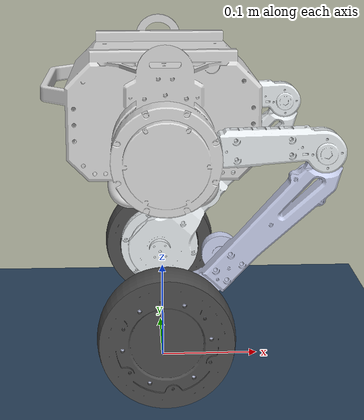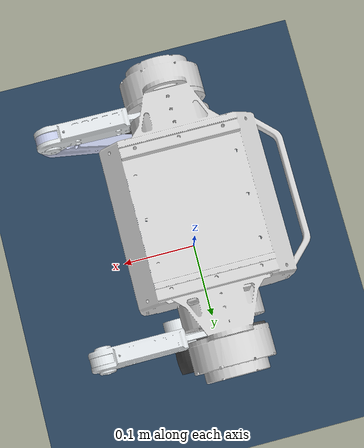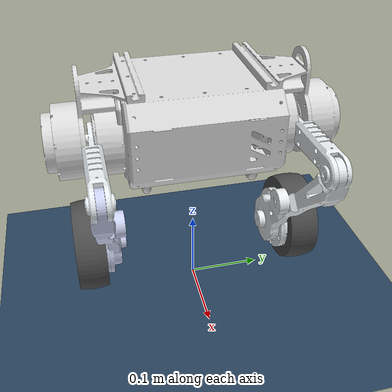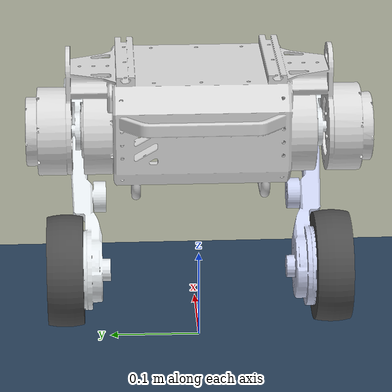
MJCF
<mujoco model="wheel_legged scene">
  <include file="wheel_legged.xml"/>

  <visual>
    <headlight diffuse="0.6 0.6 0.6" ambient="0.3 0.3 0.3" specular="0 0 0"/>
    <rgba haze="0.15 0.25 0.35 1"/>
    <global azimuth="160" elevation="-20"/>
  </visual>

  <asset>
    <texture type="skybox" builtin="gradient" rgb1="0.3 0.5 0.7" rgb2="0 0 0" width="512" height="3072"/>
    <texture type="2d" name="groundplane" builtin="checker" mark="edge" rgb1="0.2 0.3 0.4" rgb2="0.1 0.2 0.3"
      markrgb="0.8 0.8 0.8" width="300" height="300"/>
    <material name="groundplane" texture="groundplane" texuniform="true" texrepeat="1 1" reflectance="0.1"/>
  </asset>

  <worldbody>
    <light pos="0 0 3.5" dir="0 0 -1" directional="true"/>
    <geom name="floor" type="plane" size="0 0 1" pos="0.001 0 0" quat="1 0 0 0" material="groundplane" friction="1.2 0.1 1.2" solimp="0.95 0.95 0.01" solref="0.02 1"/>
  </worldbody>

  <keyframe>
    <key name="home"
      qpos="
    0 0 0.25
    1 0 0 0
    0 0 0 0 0 0 "/>
  </keyframe>

</mujoco>

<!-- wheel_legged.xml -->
<mujoco model="wheel_legged">
  <compiler angle="radian" meshdir="../meshes/"/>
  <option timestep='0.001' iterations='50' solver='PGS' gravity='0 0 -9.81'>
  </option>
  <size njmax="500" nconmax="100" />

  <default>
    <default class="wheel">
      <joint damping="0.1" armature="0.01"/>
      <default class="visual">
        <geom type="mesh" contype="0" conaffinity="0" group="1" density="0" rgba="0.75294 0.75294 0.75294 1"/>
      </default>
      <site size="0.001" rgba="0.5 0.5 0.5 0.3" group="4"/>
    </default>

    <default class="wheel_motor">
      <motor gear="1" ctrllimited="true" ctrlrange="-100 100" />
    </default>
    <default class="wheel_motor_strong">
      <motor gear="1" ctrllimited="true" ctrlrange="-100 100" />
    </default>
  </default>

  <asset>
    <material name="wheel_material" rgba="0.89804 0.91765 0.92941 1" />
    <material name="base_material" rgba="0.84706 0.84706 0.84706 1" />
    <material name="wheel_dark" rgba="0.29804 0.29804 0.29804 1" />
    <mesh name="base_link" file="base_link.STL"/>
    <mesh name="LF_Link" file="LF_Link.STL"/>
    <mesh name="LFP_Link" file="LFP_Link.STL"/>
    <mesh name="LW_Link" file="LW_Link.STL"/>
    <mesh name="RF_Link" file="RF_Link.STL"/>
    <mesh name="RFP_Link" file="RFP_Link.STL"/>
    <mesh name="RW_Link" file="RW_Link.STL"/>
  </asset>

  <worldbody>
    <light mode="targetbodycom" target="base_link" pos="2 0 2.5"/>
    <body name="base_link" pos='0 0 0.25' childclass="wheel">
      <inertial pos="-0.00064749 -8.914E-05 0.0086246" quat="1.0 0.0 0.0 0.0" mass="4.5068" diaginertia="0.0050266 0.0054947 0.0061634" />
      <freejoint/>
      <geom type="mesh" contype="0" conaffinity="0" group="1" density="0" rgba="0.84706 0.84706 0.84706 1" mesh="base_link" />
      <geom type="mesh" rgba="0.84706 0.84706 0.84706 1" mesh="base_link" />

      <body name="imu_link">
        <inertial pos="0 0 0" mass="0.01" diaginertia="1e-06 1e-06 1e-06"/>
        <geom size="0.0075 0.0075 0.002" type="box" contype="0" conaffinity="0" group="1" density="0"/>
        <site name="imu" pos="0 0 0"/>
      </body>

      <body name="LF_Link" pos="0 0.1325 0" childclass="wheel">
        <inertial pos="0.089365 -0.00018073 0.0029646" quat="1.0 0.0 0.0 0.0" mass="0.17934" diaginertia="1.9784e-05 7.9217e-05 7.1768e-05" />
        <joint name="LF_Joint" pos="0 0 0" axis="0 -1 0" range="-1.57 3.14" armature="0.01" damping="0.1" />
        <geom type="mesh" contype="0" conaffinity="0" group="1" density="0" rgba="0.89804 0.91765 0.92941 1" mesh="LF_Link" />
        <geom type="mesh" rgba="0.89804 0.91765 0.92941 1" mesh="LF_Link" />

        <body name="LFP_Link" pos="0.142 0 0" childclass="wheel">
          <inertial pos="-0.12177 0.0042175 -0.14582" quat="1.0 0.0 0.0 0.0" mass="0.95838" diaginertia="0.00069686 0.0012011 0.00065048" />
          <joint name="LFP_Joint" pos="0 0 0" axis="0 1 0" range="-1.134 0.314" armature="0.01" damping="0.1" />
          <geom type="mesh" contype="0" conaffinity="0" group="1" density="0" rgba="0.89804 0.91765 0.92941 1" mesh="LFP_Link" />
          <geom type="mesh" rgba="0.89804 0.91765 0.92941 1" mesh="LFP_Link" />

          <body name="LW_Link" pos="-0.142 0 -0.168" childclass="wheel">
            <inertial pos="-2.5931E-15 0.017841 1.3878E-16" quat="1.0 0.0 0.0 0.0" mass="0.3803" diaginertia="0.00056199 0.0010274 0.00056199" />
            <joint name="LW_Joint" pos="0 0 0" axis="0 -1 0" range="-999999 999999" armature="0.01" damping="0.1" />
            <geom type="mesh" contype="0" conaffinity="0" group="1" density="0" rgba="0.29804 0.29804 0.29804 1" mesh="LW_Link"/>
            <geom type="mesh" rgba="0.29804 0.29804 0.29804 1" mesh="LW_Link" friction="1.5 1.5 0.001" solimp="0.95 0.95 0.01" solref="0.02 1"/>
          </body>
        </body>
      </body>

      <body name="RF_Link" pos="0 -0.1325 0" childclass="wheel">
        <inertial pos="0.089365 -7.144E-05 0.0029646" quat="1.0 0.0 0.0 0.0" mass="0.17934" diaginertia="1.9784e-05 7.9217e-05 7.1768e-05" />
        <joint name="RF_Joint" pos="0 0 0" axis="0 -1 0" range="-1.57 3.14" armature="0.01" damping="0.1" />
        <geom type="mesh" contype="0" conaffinity="0" group="1" density="0" rgba="0.89804 0.91765 0.92941 1" mesh="RF_Link" />
        <geom type="mesh" rgba="0.89804 0.91765 0.92941 1" mesh="RF_Link" />

        <body name="RFP_Link" pos="0.142 0 0" childclass="wheel">
          <inertial pos="-0.12541 -0.0043984 -0.1498" quat="1.0 0.0 0.0 0.0" mass="0.95838" diaginertia="0.00064564 0.0011108 0.00061075" />
          <joint name="RFP_Joint" pos="0 0 0" axis="0 1 0" range="-1.134 0.314" armature="0.01" damping="0.1" />
          <geom type="mesh" contype="0" conaffinity="0" group="1" density="0" rgba="0.79608 0.82353 0.93725 1" mesh="RFP_Link" />
          <geom type="mesh" rgba="0.79608 0.82353 0.93725 1" mesh="RFP_Link" />

          <body name="RW_Link" pos="-0.142 0 -0.168" childclass="wheel">
            <inertial pos="5.6319E-15 -0.017841 4.0079E-14" quat="1.0 0.0 0.0 0.0" mass="0.3803" diaginertia="0.00056199 0.0010274 0.00056199" />
            <joint name="RW_Joint" pos="0 0 0" axis="0 -1 0" range="-99999 99999" armature="0.01" damping="0.1" />
            <geom type="mesh" contype="0" conaffinity="0" group="1" density="0" rgba="0.29804 0.29804 0.29804 1" mesh="RW_Link"/>
            <geom type="mesh" rgba="0.29804 0.29804 0.29804 1" mesh="RW_Link" friction="1.5 1.5 0.001" solimp="0.95 0.95 0.01" solref="0.02 1"/>
          </body>
        </body>
      </body>
    </body>
  </worldbody>

  <actuator>
    <motor class="wheel_motor" name="LF_Joint" joint="LF_Joint"/>
    <motor class="wheel_motor" name="LFP_Joint" joint="LFP_Joint"/>
    <motor class="wheel_motor_strong" name="LW_Joint" joint="LW_Joint"/>
    <motor class="wheel_motor" name="RF_Joint" joint="RF_Joint"/>
    <motor class="wheel_motor" name="RFP_Joint" joint="RFP_Joint"/>
    <motor class="wheel_motor_strong" name="RW_Joint" joint="RW_Joint"/>
  </actuator>

  <sensor>
    <accelerometer name="accel" site="imu"/>
    <gyro name="gyro" site="imu"/>

    <jointpos name="jpos_LF" joint="LF_Joint" user='13'/>
    <jointpos name="jpos_LFP" joint="LFP_Joint" user='13'/>
    <jointpos name="jpos_LW" joint="LW_Joint" user='13'/>
    <jointpos name="jpos_RF" joint="RF_Joint" user='13'/>
    <jointpos name="jpos_RFP" joint="RFP_Joint" user='13'/>
    <jointpos name="jpos_RW" joint="RW_Joint" user='13'/>

    <jointvel name="jvel_LF" joint="LF_Joint" user='13'/>
    <jointvel name="jvel_LFP" joint="LFP_Joint" user='13'/>
    <jointvel name="jvel_LW" joint="LW_Joint" user='13'/>
    <jointvel name="jvel_RF" joint="RF_Joint" user='13'/>
    <jointvel name="jvel_RFP" joint="RFP_Joint" user='13'/>
    <jointvel name="jvel_RW" joint="RW_Joint" user='13'/>

    <jointactuatorfrc name="jtor_LF" joint="LF_Joint" user='13' noise='1e-3' />
    <jointactuatorfrc name="jtor_LFP" joint="LFP_Joint" user='13' noise='1e-3' />
    <jointactuatorfrc name="jtor_LW" joint="LW_Joint" user='13' noise='1e-3' />
    <jointactuatorfrc name="jtor_RF" joint="RF_Joint" user='13' noise='1e-3' />
    <jointactuatorfrc name="jtor_RFP" joint="RFP_Joint" user='13' noise='1e-3' />
    <jointactuatorfrc name="jtor_RW" joint="RW_Joint" user='13' noise='1e-3' />

    <framequat name="imu_quat" objtype="site" noise='0.001' objname="imu" />
    <gyro name="imu_gyro" site="imu" noise='0.005' cutoff='34.9'/>
    <accelerometer name="imu_acc" site="imu" noise='0.005' cutoff='157'/>

    <framepos name="frame_pos" objtype="site" objname="imu" noise='0.001'/>
    <framelinvel name="frame_vel" objtype="site" objname="imu" noise='0.001'/>
  </sensor>

</mujoco>
